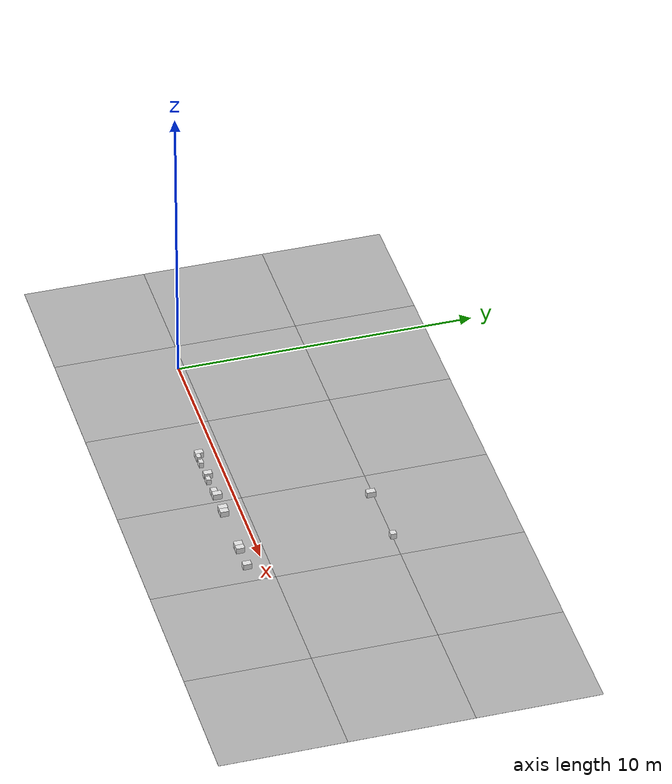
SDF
<sdf version="1.6">
 <world name="default">
  <light name="sun_light" type="directional">
   <pose>0 0 10 0 -0 0</pose>
   <diffuse>0.5 0.5 0.5 1</diffuse>
   <specular>0.1 0.1 0.1 1</specular>
   <direction>0.1 0.1 -0.9</direction>
   <attenuation>
    <range>20</range>
    <constant>0.5</constant>
    <linear>0.01</linear>
    <quadratic>0.001</quadratic>
   </attenuation>
  </light>
  <model name="Tile/0-0">
   <static>1</static>
   <link name="link">
    <collision name="collision">
     <geometry><plane><normal>0 0 1</normal><size>4.096 4.096</size></plane></geometry>
     <surface><friction><ode><mu>100</mu><mu2>50</mu2></ode></friction></surface>
    </collision>
    <visual name="visual">
     <cast_shadows>0</cast_shadows>
     <geometry><plane><normal>0 0 1</normal><size>4.096 4.096</size></plane></geometry>
     <material>
      <script>
       <uri>file://materials/scripts</uri>
       <uri>file://materials/textures</uri>
       <name>Tile/7f84f03de91e12dc92d46b0e9cb5a9d54b1283f79d86ceee557c4016112030e8</name>
      </script>
     </material>
    </visual>
   </link>
   <pose>-3.2219958316951907 -1.8519999999999999 0 0 -0 0</pose>
  </model>
  <model name="Tile/0-1">
   <static>1</static>
   <link name="link">
    <collision name="collision">
     <geometry><plane><normal>0 0 1</normal><size>4.096 4.096</size></plane></geometry>
     <surface><friction><ode><mu>100</mu><mu2>50</mu2></ode></friction></surface>
    </collision>
    <visual name="visual">
     <cast_shadows>0</cast_shadows>
     <geometry><plane><normal>0 0 1</normal><size>4.096 4.096</size></plane></geometry>
     <material>
      <script>
       <uri>file://materials/scripts</uri>
       <uri>file://materials/textures</uri>
       <name>Tile/81d61820365180f7856778b6b4ed2f9844e822efdeb88b380cea4f77ea94636c</name>
      </script>
     </material>
    </visual>
   </link>
   <pose>-3.2219958316951907 2.244 0 0 -0 0</pose>
  </model>
  <model name="Tile/0-2">
   <static>1</static>
   <link name="link">
    <collision name="collision">
     <geometry><plane><normal>0 0 1</normal><size>4.096 4.096</size></plane></geometry>
     <surface><friction><ode><mu>100</mu><mu2>50</mu2></ode></friction></surface>
    </collision>
    <visual name="visual">
     <cast_shadows>0</cast_shadows>
     <geometry><plane><normal>0 0 1</normal><size>4.096 4.096</size></plane></geometry>
     <material>
      <script>
       <uri>file://materials/scripts</uri>
       <uri>file://materials/textures</uri>
       <name>Tile/5eab350b8220ac9944dbdfa4ac3288c7c17e24c3bf5df0dfcf6173d64dae00a1</name>
      </script>
     </material>
    </visual>
   </link>
   <pose>-3.2219958316951907 6.34 0 0 -0 0</pose>
  </model>
  <model name="Tile/1-0">
   <static>1</static>
   <link name="link">
    <collision name="collision">
     <geometry><plane><normal>0 0 1</normal><size>4.096 4.096</size></plane></geometry>
     <surface><friction><ode><mu>100</mu><mu2>50</mu2></ode></friction></surface>
    </collision>
    <visual name="visual">
     <cast_shadows>0</cast_shadows>
     <geometry><plane><normal>0 0 1</normal><size>4.096 4.096</size></plane></geometry>
     <material>
      <script>
       <uri>file://materials/scripts</uri>
       <uri>file://materials/textures</uri>
       <name>Tile/647238f07afa791369c513b9aff7e9d0752cb09798526066e71d118731d6f124</name>
      </script>
     </material>
    </visual>
   </link>
   <pose>0.8740041683048094 -1.8519999999999999 0 0 -0 0</pose>
  </model>
  <model name="Tile/1-1">
   <static>1</static>
   <link name="link">
    <collision name="collision">
     <geometry><plane><normal>0 0 1</normal><size>4.096 4.096</size></plane></geometry>
     <surface><friction><ode><mu>100</mu><mu2>50</mu2></ode></friction></surface>
    </collision>
    <visual name="visual">
     <cast_shadows>0</cast_shadows>
     <geometry><plane><normal>0 0 1</normal><size>4.096 4.096</size></plane></geometry>
     <material>
      <script>
       <uri>file://materials/scripts</uri>
       <uri>file://materials/textures</uri>
       <name>Tile/8ac20a34a4b123489b1978a90ff572dce85fd897f465300b31e18481bf6be9cb</name>
      </script>
     </material>
    </visual>
   </link>
   <pose>0.8740041683048094 2.244 0 0 -0 0</pose>
  </model>
  <model name="Tile/1-2">
   <static>1</static>
   <link name="link">
    <collision name="collision">
     <geometry><plane><normal>0 0 1</normal><size>4.096 4.096</size></plane></geometry>
     <surface><friction><ode><mu>100</mu><mu2>50</mu2></ode></friction></surface>
    </collision>
    <visual name="visual">
     <cast_shadows>0</cast_shadows>
     <geometry><plane><normal>0 0 1</normal><size>4.096 4.096</size></plane></geometry>
     <material>
      <script>
       <uri>file://materials/scripts</uri>
       <uri>file://materials/textures</uri>
       <name>Tile/51eb499c3f2e34d0260f164e1bb4ca02a69b889d4a36c5c50f638ccc2c65c286</name>
      </script>
     </material>
    </visual>
   </link>
   <pose>0.8740041683048094 6.34 0 0 -0 0</pose>
  </model>
  <model name="Tile/2-0">
   <static>1</static>
   <link name="link">
    <collision name="collision">
     <geometry><plane><normal>0 0 1</normal><size>4.096 4.096</size></plane></geometry>
     <surface><friction><ode><mu>100</mu><mu2>50</mu2></ode></friction></surface>
    </collision>
    <visual name="visual">
     <cast_shadows>0</cast_shadows>
     <geometry><plane><normal>0 0 1</normal><size>4.096 4.096</size></plane></geometry>
     <material>
      <script>
       <uri>file://materials/scripts</uri>
       <uri>file://materials/textures</uri>
       <name>Tile/01d4117fb134e4bd823f5ecd128cc4758fc9448e852d9532fd28008ab499dd08</name>
      </script>
     </material>
    </visual>
   </link>
   <pose>4.9700041683048095 -1.8519999999999999 0 0 -0 0</pose>
  </model>
  <model name="Tile/2-1">
   <static>1</static>
   <link name="link">
    <collision name="collision">
     <geometry><plane><normal>0 0 1</normal><size>4.096 4.096</size></plane></geometry>
     <surface><friction><ode><mu>100</mu><mu2>50</mu2></ode></friction></surface>
    </collision>
    <visual name="visual">
     <cast_shadows>0</cast_shadows>
     <geometry><plane><normal>0 0 1</normal><size>4.096 4.096</size></plane></geometry>
     <material>
      <script>
       <uri>file://materials/scripts</uri>
       <uri>file://materials/textures</uri>
       <name>Tile/601b34b5ae0c2c4ae985a7bc8c92a71ca94f8a20c4954ede04bfbef232c8b08b</name>
      </script>
     </material>
    </visual>
   </link>
   <pose>4.9700041683048095 2.244 0 0 -0 0</pose>
  </model>
  <model name="Tile/2-2">
   <static>1</static>
   <link name="link">
    <collision name="collision">
     <geometry><plane><normal>0 0 1</normal><size>4.096 4.096</size></plane></geometry>
     <surface><friction><ode><mu>100</mu><mu2>50</mu2></ode></friction></surface>
    </collision>
    <visual name="visual">
     <cast_shadows>0</cast_shadows>
     <geometry><plane><normal>0 0 1</normal><size>4.096 4.096</size></plane></geometry>
     <material>
      <script>
       <uri>file://materials/scripts</uri>
       <uri>file://materials/textures</uri>
       <name>Tile/7bcfba017b091873ea2f3779b10d9a91d048cfb3c9fc777b959b2f931bec7b1e</name>
      </script>
     </material>
    </visual>
   </link>
   <pose>4.9700041683048095 6.34 0 0 -0 0</pose>
  </model>
  <model name="Tile/3-0">
   <static>1</static>
   <link name="link">
    <collision name="collision">
     <geometry><plane><normal>0 0 1</normal><size>4.096 4.096</size></plane></geometry>
     <surface><friction><ode><mu>100</mu><mu2>50</mu2></ode></friction></surface>
    </collision>
    <visual name="visual">
     <cast_shadows>0</cast_shadows>
     <geometry><plane><normal>0 0 1</normal><size>4.096 4.096</size></plane></geometry>
     <material>
      <script>
       <uri>file://materials/scripts</uri>
       <uri>file://materials/textures</uri>
       <name>Tile/c374ef8eb10071deaca72bdce481f21e7cb0f293df25e82a49a3d323649b8d93</name>
      </script>
     </material>
    </visual>
   </link>
   <pose>9.06600416830481 -1.8519999999999999 0 0 -0 0</pose>
  </model>
  <model name="Tile/3-1">
   <static>1</static>
   <link name="link">
    <collision name="collision">
     <geometry><plane><normal>0 0 1</normal><size>4.096 4.096</size></plane></geometry>
     <surface><friction><ode><mu>100</mu><mu2>50</mu2></ode></friction></surface>
    </collision>
    <visual name="visual">
     <cast_shadows>0</cast_shadows>
     <geometry><plane><normal>0 0 1</normal><size>4.096 4.096</size></plane></geometry>
     <material>
      <script>
       <uri>file://materials/scripts</uri>
       <uri>file://materials/textures</uri>
       <name>Tile/3f62234f01425cba8f6b4be4241aa1e5dcddd84b2b03d853f6427e88fab3bf15</name>
      </script>
     </material>
    </visual>
   </link>
   <pose>9.06600416830481 2.244 0 0 -0 0</pose>
  </model>
  <model name="Tile/3-2">
   <static>1</static>
   <link name="link">
    <collision name="collision">
     <geometry><plane><normal>0 0 1</normal><size>4.096 4.096</size></plane></geometry>
     <surface><friction><ode><mu>100</mu><mu2>50</mu2></ode></friction></surface>
    </collision>
    <visual name="visual">
     <cast_shadows>0</cast_shadows>
     <geometry><plane><normal>0 0 1</normal><size>4.096 4.096</size></plane></geometry>
     <material>
      <script>
       <uri>file://materials/scripts</uri>
       <uri>file://materials/textures</uri>
       <name>Tile/7bcfba017b091873ea2f3779b10d9a91d048cfb3c9fc777b959b2f931bec7b1e</name>
      </script>
     </material>
    </visual>
   </link>
   <pose>9.06600416830481 6.34 0 0 -0 0</pose>
  </model>
  <model name="Tile/4-0">
   <static>1</static>
   <link name="link">
    <collision name="collision">
     <geometry><plane><normal>0 0 1</normal><size>4.096 4.096</size></plane></geometry>
     <surface><friction><ode><mu>100</mu><mu2>50</mu2></ode></friction></surface>
    </collision>
    <visual name="visual">
     <cast_shadows>0</cast_shadows>
     <geometry><plane><normal>0 0 1</normal><size>4.096 4.096</size></plane></geometry>
     <material>
      <script>
       <uri>file://materials/scripts</uri>
       <uri>file://materials/textures</uri>
       <name>Tile/da789ce43e7ec6eeee3fe0f53b2a9b62ec437f962eac46a1c9c7e965f9461aea</name>
      </script>
     </material>
    </visual>
   </link>
   <pose>13.162004168304808 -1.8519999999999999 0 0 -0 0</pose>
  </model>
  <model name="Tile/4-1">
   <static>1</static>
   <link name="link">
    <collision name="collision">
     <geometry><plane><normal>0 0 1</normal><size>4.096 4.096</size></plane></geometry>
     <surface><friction><ode><mu>100</mu><mu2>50</mu2></ode></friction></surface>
    </collision>
    <visual name="visual">
     <cast_shadows>0</cast_shadows>
     <geometry><plane><normal>0 0 1</normal><size>4.096 4.096</size></plane></geometry>
     <material>
      <script>
       <uri>file://materials/scripts</uri>
       <uri>file://materials/textures</uri>
       <name>Tile/6ebb94bf1be56f302c0c5032b705053c40adf194d097f29b31b75bfad591ce96</name>
      </script>
     </material>
    </visual>
   </link>
   <pose>13.162004168304808 2.244 0 0 -0 0</pose>
  </model>
  <model name="Tile/4-2">
   <static>1</static>
   <link name="link">
    <collision name="collision">
     <geometry><plane><normal>0 0 1</normal><size>4.096 4.096</size></plane></geometry>
     <surface><friction><ode><mu>100</mu><mu2>50</mu2></ode></friction></surface>
    </collision>
    <visual name="visual">
     <cast_shadows>0</cast_shadows>
     <geometry><plane><normal>0 0 1</normal><size>4.096 4.096</size></plane></geometry>
     <material>
      <script>
       <uri>file://materials/scripts</uri>
       <uri>file://materials/textures</uri>
       <name>Tile/825b884e9be21af1b05adfb064207ca2ba7f91a661a6cf6a208d037b972a6c3f</name>
      </script>
     </material>
    </visual>
   </link>
   <pose>13.162004168304808 6.34 0 0 -0 0</pose>
  </model>
  <model name="Tile/5-0">
   <static>1</static>
   <link name="link">
    <collision name="collision">
     <geometry><plane><normal>0 0 1</normal><size>4.096 4.096</size></plane></geometry>
     <surface><friction><ode><mu>100</mu><mu2>50</mu2></ode></friction></surface>
    </collision>
    <visual name="visual">
     <cast_shadows>0</cast_shadows>
     <geometry><plane><normal>0 0 1</normal><size>4.096 4.096</size></plane></geometry>
     <material>
      <script>
       <uri>file://materials/scripts</uri>
       <uri>file://materials/textures</uri>
       <name>Tile/5eab350b8220ac9944dbdfa4ac3288c7c17e24c3bf5df0dfcf6173d64dae00a1</name>
      </script>
     </material>
    </visual>
   </link>
   <pose>17.258004168304808 -1.8519999999999999 0 0 -0 0</pose>
  </model>
  <model name="Tile/5-1">
   <static>1</static>
   <link name="link">
    <collision name="collision">
     <geometry><plane><normal>0 0 1</normal><size>4.096 4.096</size></plane></geometry>
     <surface><friction><ode><mu>100</mu><mu2>50</mu2></ode></friction></surface>
    </collision>
    <visual name="visual">
     <cast_shadows>0</cast_shadows>
     <geometry><plane><normal>0 0 1</normal><size>4.096 4.096</size></plane></geometry>
     <material>
      <script>
       <uri>file://materials/scripts</uri>
       <uri>file://materials/textures</uri>
       <name>Tile/5eab350b8220ac9944dbdfa4ac3288c7c17e24c3bf5df0dfcf6173d64dae00a1</name>
      </script>
     </material>
    </visual>
   </link>
   <pose>17.258004168304808 2.244 0 0 -0 0</pose>
  </model>
  <model name="Tile/5-2">
   <static>1</static>
   <link name="link">
    <collision name="collision">
     <geometry><plane><normal>0 0 1</normal><size>4.096 4.096</size></plane></geometry>
     <surface><friction><ode><mu>100</mu><mu2>50</mu2></ode></friction></surface>
    </collision>
    <visual name="visual">
     <cast_shadows>0</cast_shadows>
     <geometry><plane><normal>0 0 1</normal><size>4.096 4.096</size></plane></geometry>
     <material>
      <script>
       <uri>file://materials/scripts</uri>
       <uri>file://materials/textures</uri>
       <name>Tile/5eab350b8220ac9944dbdfa4ac3288c7c17e24c3bf5df0dfcf6173d64dae00a1</name>
      </script>
     </material>
    </visual>
   </link>
   <pose>17.258004168304808 6.34 0 0 -0 0</pose>
  </model>
  <model name="Obstacle/-5/0">
   <pose>4.6 -0.5599999999999999 0.1 0 0 -0.0</pose>
   <link name="link">
    <inertial>
     <mass>10</mass>
     <inertia>
      <ixx>0.166667</ixx>
      <ixy>0</ixy>
      <ixz>0</ixz>
      <iyy>0.166667</iyy>
      <iyz>0</iyz>
      <izz>0.166667</izz>
     </inertia>
    </inertial>
    <collision name="collision"><geometry><box><size>0.2 0.28 0.2</size></box></geometry></collision>
    <visual name="visual">
     <geometry><box><size>0.2 0.28 0.2</size></box></geometry>
     <material>
      <script><name>Gazebo/White</name><uri>file://media/materials/scripts/gazebo.material</uri></script>
     </material>
    </visual>
   </link>
  </model>
  <model name="Obstacle/-9/0">
   <pose>4.8 -0.625 0.1 0 0 -0.0</pose>
   <link name="link">
    <inertial>
     <mass>10</mass>
     <inertia>
      <ixx>0.166667</ixx>
      <ixy>0</ixy>
      <ixz>0</ixz>
      <iyy>0.166667</iyy>
      <iyz>0</iyz>
      <izz>0.166667</izz>
     </inertia>
    </inertial>
    <collision name="collision"><geometry><box><size>0.2 0.15 0.2</size></box></geometry></collision>
    <visual name="visual">
     <geometry><box><size>0.2 0.15 0.2</size></box></geometry>
     <material>
      <script><name>Gazebo/White</name><uri>file://media/materials/scripts/gazebo.material</uri></script>
     </material>
    </visual>
   </link>
  </model>
  <model name="Obstacle/-16/0">
   <pose>5.1 -0.625 0.1 0 0 -0.0</pose>
   <link name="link">
    <inertial>
     <mass>10</mass>
     <inertia>
      <ixx>0.166667</ixx>
      <ixy>0</ixy>
      <ixz>0</ixz>
      <iyy>0.166667</iyy>
      <iyz>0</iyz>
      <izz>0.166667</izz>
     </inertia>
    </inertial>
    <collision name="collision"><geometry><box><size>0.2 0.15 0.2</size></box></geometry></collision>
    <visual name="visual">
     <geometry><box><size>0.2 0.15 0.2</size></box></geometry>
     <material>
      <script><name>Gazebo/White</name><uri>file://media/materials/scripts/gazebo.material</uri></script>
     </material>
    </visual>
   </link>
  </model>
  <model name="Obstacle/-23/0">
   <pose>5.7 -0.5599999999999999 0.1 0 0 -0.0</pose>
   <link name="link">
    <inertial>
     <mass>10</mass>
     <inertia>
      <ixx>0.166667</ixx>
      <ixy>0</ixy>
      <ixz>0</ixz>
      <iyy>0.166667</iyy>
      <iyz>0</iyz>
      <izz>0.166667</izz>
     </inertia>
    </inertial>
    <collision name="collision"><geometry><box><size>0.2 0.28 0.2</size></box></geometry></collision>
    <visual name="visual">
     <geometry><box><size>0.2 0.28 0.2</size></box></geometry>
     <material>
      <script><name>Gazebo/White</name><uri>file://media/materials/scripts/gazebo.material</uri></script>
     </material>
    </visual>
   </link>
  </model>
  <model name="Obstacle/-30/0">
   <pose>6.0 -0.625 0.1 0 0 -0.0</pose>
   <link name="link">
    <inertial>
     <mass>10</mass>
     <inertia>
      <ixx>0.166667</ixx>
      <ixy>0</ixy>
      <ixz>0</ixz>
      <iyy>0.166667</iyy>
      <iyz>0</iyz>
      <izz>0.166667</izz>
     </inertia>
    </inertial>
    <collision name="collision"><geometry><box><size>0.2 0.15 0.2</size></box></geometry></collision>
    <visual name="visual">
     <geometry><box><size>0.2 0.15 0.2</size></box></geometry>
     <material>
      <script><name>Gazebo/White</name><uri>file://media/materials/scripts/gazebo.material</uri></script>
     </material>
    </visual>
   </link>
  </model>
  <model name="Obstacle/-37/0">
   <pose>6.6000000000000005 -0.6 0.1 0 0 -0.0</pose>
   <link name="link">
    <inertial>
     <mass>10</mass>
     <inertia>
      <ixx>0.166667</ixx>
      <ixy>0</ixy>
      <ixz>0</ixz>
      <iyy>0.166667</iyy>
      <iyz>0</iyz>
      <izz>0.166667</izz>
     </inertia>
    </inertial>
    <collision name="collision"><geometry><box><size>0.2 0.2 0.2</size></box></geometry></collision>
    <visual name="visual">
     <geometry><box><size>0.2 0.2 0.2</size></box></geometry>
     <material>
      <script><name>Gazebo/White</name><uri>file://media/materials/scripts/gazebo.material</uri></script>
     </material>
    </visual>
   </link>
  </model>
  <model name="Obstacle/-41/0">
   <pose>6.800000000000001 -0.5499999999999999 0.1 0 0 -0.0</pose>
   <link name="link">
    <inertial>
     <mass>10</mass>
     <inertia>
      <ixx>0.166667</ixx>
      <ixy>0</ixy>
      <ixz>0</ixz>
      <iyy>0.166667</iyy>
      <iyz>0</iyz>
      <izz>0.166667</izz>
     </inertia>
    </inertial>
    <collision name="collision"><geometry><box><size>0.2 0.3 0.2</size></box></geometry></collision>
    <visual name="visual">
     <geometry><box><size>0.2 0.3 0.2</size></box></geometry>
     <material>
      <script><name>Gazebo/White</name><uri>file://media/materials/scripts/gazebo.material</uri></script>
     </material>
    </visual>
   </link>
  </model>
  <model name="Obstacle/-48/0">
   <pose>7.500000000000001 -0.5499999999999999 0.1 0 0 -0.0</pose>
   <link name="link">
    <inertial>
     <mass>10</mass>
     <inertia>
      <ixx>0.166667</ixx>
      <ixy>0</ixy>
      <ixz>0</ixz>
      <iyy>0.166667</iyy>
      <iyz>0</iyz>
      <izz>0.166667</izz>
     </inertia>
    </inertial>
    <collision name="collision"><geometry><box><size>0.2 0.3 0.2</size></box></geometry></collision>
    <visual name="visual">
     <geometry><box><size>0.2 0.3 0.2</size></box></geometry>
     <material>
      <script><name>Gazebo/White</name><uri>file://media/materials/scripts/gazebo.material</uri></script>
     </material>
    </visual>
   </link>
  </model>
  <model name="Obstacle/-52/0">
   <pose>7.700000000000001 -0.5599999999999999 0.1 0 0 -0.0</pose>
   <link name="link">
    <inertial>
     <mass>10</mass>
     <inertia>
      <ixx>0.166667</ixx>
      <ixy>0</ixy>
      <ixz>0</ixz>
      <iyy>0.166667</iyy>
      <iyz>0</iyz>
      <izz>0.166667</izz>
     </inertia>
    </inertial>
    <collision name="collision"><geometry><box><size>0.2 0.28 0.2</size></box></geometry></collision>
    <visual name="visual">
     <geometry><box><size>0.2 0.28 0.2</size></box></geometry>
     <material>
      <script><name>Gazebo/White</name><uri>file://media/materials/scripts/gazebo.material</uri></script>
     </material>
    </visual>
   </link>
  </model>
  <model name="Obstacle/-59/0">
   <pose>9.4 -0.5599999999999999 0.1 0 0 -0.0</pose>
   <link name="link">
    <inertial>
     <mass>10</mass>
     <inertia>
      <ixx>0.166667</ixx>
      <ixy>0</ixy>
      <ixz>0</ixz>
      <iyy>0.166667</iyy>
      <iyz>0</iyz>
      <izz>0.166667</izz>
     </inertia>
    </inertial>
    <collision name="collision"><geometry><box><size>0.2 0.28 0.2</size></box></geometry></collision>
    <visual name="visual">
     <geometry><box><size>0.2 0.28 0.2</size></box></geometry>
     <material>
      <script><name>Gazebo/White</name><uri>file://media/materials/scripts/gazebo.material</uri></script>
     </material>
    </visual>
   </link>
  </model>
  <model name="Obstacle/-63/0">
   <pose>9.6 -0.5599999999999999 0.1 0 0 -0.0</pose>
   <link name="link">
    <inertial>
     <mass>10</mass>
     <inertia>
      <ixx>0.166667</ixx>
      <ixy>0</ixy>
      <ixz>0</ixz>
      <iyy>0.166667</iyy>
      <iyz>0</iyz>
      <izz>0.166667</izz>
     </inertia>
    </inertial>
    <collision name="collision"><geometry><box><size>0.2 0.28 0.2</size></box></geometry></collision>
    <visual name="visual">
     <geometry><box><size>0.2 0.28 0.2</size></box></geometry>
     <material>
      <script><name>Gazebo/White</name><uri>file://media/materials/scripts/gazebo.material</uri></script>
     </material>
    </visual>
   </link>
  </model>
  <model name="Obstacle/-70/0">
   <pose>10.43 -0.5599999999999999 0.1 0 0 -0.0</pose>
   <link name="link">
    <inertial>
     <mass>10</mass>
     <inertia>
      <ixx>0.166667</ixx>
      <ixy>0</ixy>
      <ixz>0</ixz>
      <iyy>0.166667</iyy>
      <iyz>0</iyz>
      <izz>0.166667</izz>
     </inertia>
    </inertial>
    <collision name="collision"><geometry><box><size>0.2 0.28 0.2</size></box></geometry></collision>
    <visual name="visual">
     <geometry><box><size>0.2 0.28 0.2</size></box></geometry>
     <material>
      <script><name>Gazebo/White</name><uri>file://media/materials/scripts/gazebo.material</uri></script>
     </material>
    </visual>
   </link>
  </model>
  <model name="Obstacle/-92/0">
   <pose>10.23 4.3 0.1 0 0 3.141592653589793</pose>
   <link name="link">
    <inertial>
     <mass>10</mass>
     <inertia>
      <ixx>0.166667</ixx>
      <ixy>0</ixy>
      <ixz>0</ixz>
      <iyy>0.166667</iyy>
      <iyz>0</iyz>
      <izz>0.166667</izz>
     </inertia>
    </inertial>
    <collision name="collision"><geometry><box><size>0.2 0.2 0.2</size></box></geometry></collision>
    <visual name="visual">
     <geometry><box><size>0.2 0.2 0.2</size></box></geometry>
     <material>
      <script><name>Gazebo/White</name><uri>file://media/materials/scripts/gazebo.material</uri></script>
     </material>
    </visual>
   </link>
  </model>
  <model name="Obstacle/-97/0">
   <pose>8.030000000000001 4.2 0.1 0 0 3.141592653589793</pose>
   <link name="link">
    <inertial>
     <mass>10</mass>
     <inertia>
      <ixx>0.166667</ixx>
      <ixy>0</ixy>
      <ixz>0</ixz>
      <iyy>0.166667</iyy>
      <iyz>0</iyz>
      <izz>0.166667</izz>
     </inertia>
    </inertial>
    <collision name="collision"><geometry><box><size>0.2 0.3 0.2</size></box></geometry></collision>
    <visual name="visual">
     <geometry><box><size>0.2 0.3 0.2</size></box></geometry>
     <material>
      <script><name>Gazebo/White</name><uri>file://media/materials/scripts/gazebo.material</uri></script>
     </material>
    </visual>
   </link>
  </model>
 </world>
</sdf>
